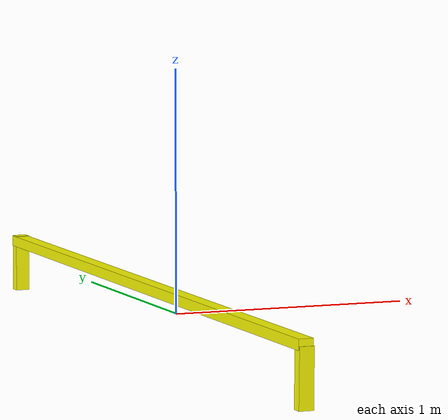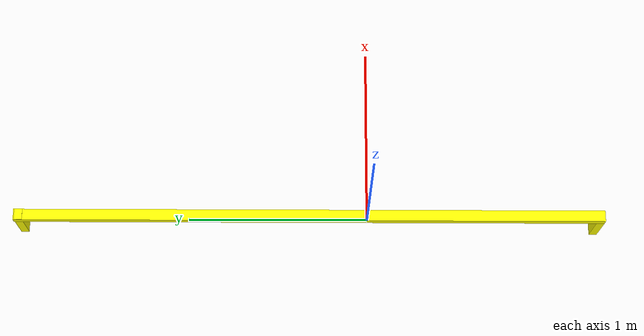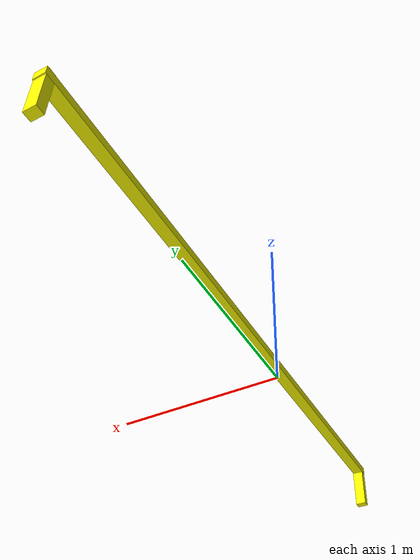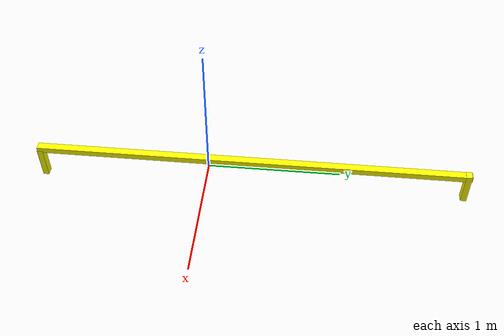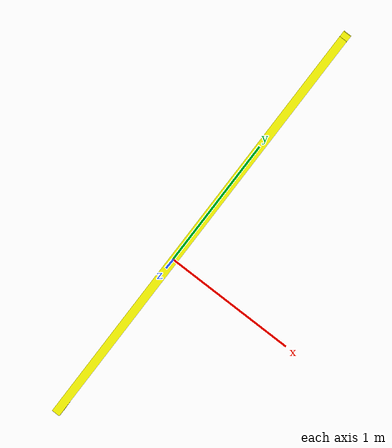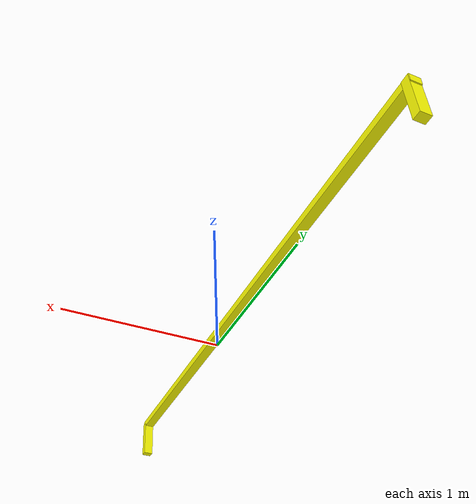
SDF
<?xml version='1.0'?>
<sdf version='1.7'>
  <model name='trave'>
    <link name='link_clone'>
      <inertial>
        <mass>0.05</mass>
        <inertia>
          <ixx>0.00026237</ixx>
          <ixy>0</ixy>
          <ixz>0</ixz>
          <iyy>0.00026976</iyy>
          <iyz>0</iyz>
          <izz>2.415e-05</izz>
        </inertia>
        <pose>0 0 0 0 -0 0</pose>
      </inertial>
      <self_collide>0</self_collide>
      <enable_wind>0</enable_wind>
      <kinematic>0</kinematic>
      <pose>0.003964 1.95084 -0.033189 0 -3e-06 -2.6e-05</pose>
      <gravity>1</gravity>
      <visual name='visual'>
        <geometry>
          <box>
            <size>0.061532 0.044841 0.246895</size>
          </box>
        </geometry>
        <material>
          <script>
            <name>Gazebo/Grey</name>
            <uri>file://media/materials/scripts/gazebo.material</uri>
          </script>
          <shader type='pixel'>
            <normal_map>__default__</normal_map>
          </shader>
          <ambient>1 1 0 0</ambient>
          <diffuse>1 1 0 1</diffuse>
          <specular>1 1 0 1</specular>
          <emissive>0 0 0 1</emissive>
        </material>
        <pose>0 0 0 0 -0 0</pose>
        <transparency>0</transparency>
        <cast_shadows>1</cast_shadows>
      </visual>
      <collision name='collision'>
        <laser_retro>0</laser_retro>
        <max_contacts>10</max_contacts>
        <pose>0 0 0 0 -0 0</pose>
        <geometry>
          <box>
            <size>0.061532 0.044841 0.246895</size>
          </box>
        </geometry>
        <surface>
          <friction>
            <ode>
              <mu>1</mu>
              <mu2>1</mu2>
              <fdir1>0 0 0</fdir1>
              <slip1>0</slip1>
              <slip2>0</slip2>
            </ode>
            <torsional>
              <coefficient>1</coefficient>
              <patch_radius>0</patch_radius>
              <surface_radius>0</surface_radius>
              <use_patch_radius>1</use_patch_radius>
              <ode>
                <slip>0</slip>
              </ode>
            </torsional>
          </friction>
          <bounce>
            <restitution_coefficient>0</restitution_coefficient>
            <threshold>1e+06</threshold>
          </bounce>
          <contact>
            <collide_without_contact>0</collide_without_contact>
            <collide_without_contact_bitmask>1</collide_without_contact_bitmask>
            <collide_bitmask>1</collide_bitmask>
            <ode>
              <soft_cfm>0</soft_cfm>
              <soft_erp>0.2</soft_erp>
              <kp>1e+13</kp>
              <kd>1</kd>
              <max_vel>0.01</max_vel>
              <min_depth>0</min_depth>
            </ode>
            <bullet>
              <split_impulse>1</split_impulse>
              <split_impulse_penetration_threshold>-0.01</split_impulse_penetration_threshold>
              <soft_cfm>0</soft_cfm>
              <soft_erp>0.2</soft_erp>
              <kp>1e+13</kp>
              <kd>1</kd>
            </bullet>
          </contact>
        </surface>
      </collision>
    </link>
    <link name='link_clone_0'>
      <inertial>
        <mass>0.203195</mass>
        <inertia>
          <ixx>0.185127</ixx>
          <ixy>0</ixy>
          <ixz>0</ixz>
          <iyy>0.185157</iyy>
          <iyz>0</iyz>
          <izz>9.81583e-05</izz>
        </inertia>
        <pose>0 0 0 0 -0 0</pose>
      </inertial>
      <self_collide>0</self_collide>
      <enable_wind>0</enable_wind>
      <kinematic>0</kinematic>
      <pose>0.003577 0.325135 0.06698 -1.57167 -3e-06 -2.6e-05</pose>
      <gravity>1</gravity>
      <visual name='visual'>
        <geometry>
          <box>
            <size>0.061532 0.044841 3.3062</size>
          </box>
        </geometry>
        <material>
          <script>
            <name>Gazebo/Grey</name>
            <uri>file://media/materials/scripts/gazebo.material</uri>
          </script>
          <shader type='pixel'>
            <normal_map>__default__</normal_map>
          </shader>
          <ambient>1 1 0 0</ambient>
          <diffuse>1 1 0 1</diffuse>
          <specular>1 1 0 1</specular>
          <emissive>0 0 0 1</emissive>
        </material>
        <pose>0 0 0 0 -0 0</pose>
        <transparency>0</transparency>
        <cast_shadows>1</cast_shadows>
      </visual>
      <collision name='collision'>
        <laser_retro>0</laser_retro>
        <max_contacts>10</max_contacts>
        <pose>0 0 0 0 -0 0</pose>
        <geometry>
          <box>
            <size>0.061532 0.044841 3.3062</size>
          </box>
        </geometry>
        <surface>
          <friction>
            <ode>
              <mu>1</mu>
              <mu2>1</mu2>
              <fdir1>0 0 0</fdir1>
              <slip1>0</slip1>
              <slip2>0</slip2>
            </ode>
            <torsional>
              <coefficient>1</coefficient>
              <patch_radius>0</patch_radius>
              <surface_radius>0</surface_radius>
              <use_patch_radius>1</use_patch_radius>
              <ode>
                <slip>0</slip>
              </ode>
            </torsional>
          </friction>
          <bounce>
            <restitution_coefficient>0</restitution_coefficient>
            <threshold>1e+06</threshold>
          </bounce>
          <contact>
            <collide_without_contact>0</collide_without_contact>
            <collide_without_contact_bitmask>1</collide_without_contact_bitmask>
            <collide_bitmask>1</collide_bitmask>
            <ode>
              <soft_cfm>0</soft_cfm>
              <soft_erp>0.2</soft_erp>
              <kp>1e+13</kp>
              <kd>1</kd>
              <max_vel>0.01</max_vel>
              <min_depth>0</min_depth>
            </ode>
            <bullet>
              <split_impulse>1</split_impulse>
              <split_impulse_penetration_threshold>-0.01</split_impulse_penetration_threshold>
              <soft_cfm>0</soft_cfm>
              <soft_erp>0.2</soft_erp>
              <kp>1e+13</kp>
              <kd>1</kd>
            </bullet>
          </contact>
        </surface>
      </collision>
    </link>
    <link name='link_clone_clone'>
      <inertial>
        <mass>0.05</mass>
        <inertia>
          <ixx>0.00026237</ixx>
          <ixy>0</ixy>
          <ixz>0</ixz>
          <iyy>0.00026976</iyy>
          <iyz>0</iyz>
          <izz>2.415e-05</izz>
        </inertia>
        <pose>0 0 0 0 -0 0</pose>
      </inertial>
      <self_collide>0</self_collide>
      <enable_wind>0</enable_wind>
      <kinematic>0</kinematic>
      <pose>0.006446 -1.30635 -0.061364 0.021558 -4.2e-05 0.001742</pose>
      <gravity>1</gravity>
      <visual name='visual'>
        <geometry>
          <box>
            <size>0.061532 0.044841 0.246895</size>
          </box>
        </geometry>
        <material>
          <script>
            <name>Gazebo/Grey</name>
            <uri>file://media/materials/scripts/gazebo.material</uri>
          </script>
          <shader type='pixel'>
            <normal_map>__default__</normal_map>
          </shader>
          <ambient>1 1 0 0</ambient>
          <diffuse>1 1 0 1</diffuse>
          <specular>1 1 0 1</specular>
          <emissive>0 0 0 1</emissive>
        </material>
        <pose>0 0 0 0 -0 0</pose>
        <transparency>0</transparency>
        <cast_shadows>1</cast_shadows>
      </visual>
      <collision name='collision'>
        <laser_retro>0</laser_retro>
        <max_contacts>10</max_contacts>
        <pose>0 0 0 0 -0 0</pose>
        <geometry>
          <box>
            <size>0.061532 0.044841 0.246895</size>
          </box>
        </geometry>
        <surface>
          <friction>
            <ode>
              <mu>1</mu>
              <mu2>1</mu2>
              <fdir1>0 0 0</fdir1>
              <slip1>0</slip1>
              <slip2>0</slip2>
            </ode>
            <torsional>
              <coefficient>1</coefficient>
              <patch_radius>0</patch_radius>
              <surface_radius>0</surface_radius>
              <use_patch_radius>1</use_patch_radius>
              <ode>
                <slip>0</slip>
              </ode>
            </torsional>
          </friction>
          <bounce>
            <restitution_coefficient>0</restitution_coefficient>
            <threshold>1e+06</threshold>
          </bounce>
          <contact>
            <collide_without_contact>0</collide_without_contact>
            <collide_without_contact_bitmask>1</collide_without_contact_bitmask>
            <collide_bitmask>1</collide_bitmask>
            <ode>
              <soft_cfm>0</soft_cfm>
              <soft_erp>0.2</soft_erp>
              <kp>1e+13</kp>
              <kd>1</kd>
              <max_vel>0.01</max_vel>
              <min_depth>0</min_depth>
            </ode>
            <bullet>
              <split_impulse>1</split_impulse>
              <split_impulse_penetration_threshold>-0.01</split_impulse_penetration_threshold>
              <soft_cfm>0</soft_cfm>
              <soft_erp>0.2</soft_erp>
              <kp>1e+13</kp>
              <kd>1</kd>
            </bullet>
          </contact>
        </surface>
      </collision>
    </link>
    <joint name='link_clone_0_JOINT_0' type='fixed'>
      <parent>link_clone_0</parent>
      <child>link_clone_clone</child>
      <pose>0 0 0 0 -0 0</pose>
      <physics>
        <ode>
          <limit>
            <cfm>0</cfm>
            <erp>0.2</erp>
          </limit>
          <suspension>
            <cfm>0</cfm>
            <erp>0.2</erp>
          </suspension>
        </ode>
      </physics>
    </joint>
    <joint name='link_clone_0_JOINT_1' type='fixed'>
      <parent>link_clone_0</parent>
      <child>link_clone</child>
      <pose>0 0 0 0 -0 0</pose>
      <physics>
        <ode>
          <limit>
            <cfm>0</cfm>
            <erp>0.2</erp>
          </limit>
          <suspension>
            <cfm>0</cfm>
            <erp>0.2</erp>
          </suspension>
        </ode>
      </physics>
    </joint>
    <static>0</static>
    <allow_auto_disable>1</allow_auto_disable>
  </model>
</sdf>
